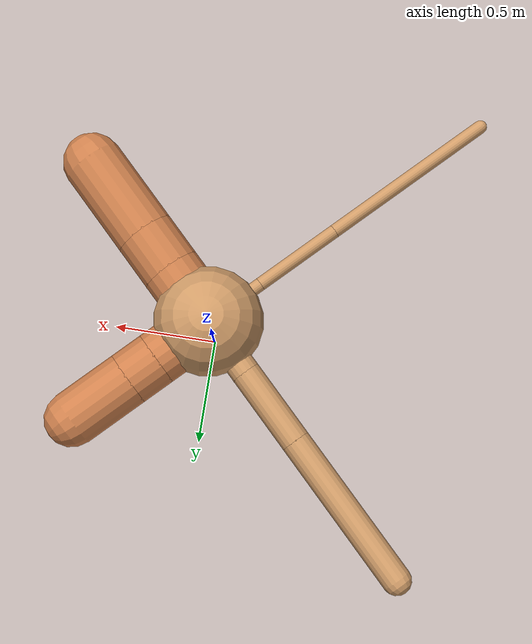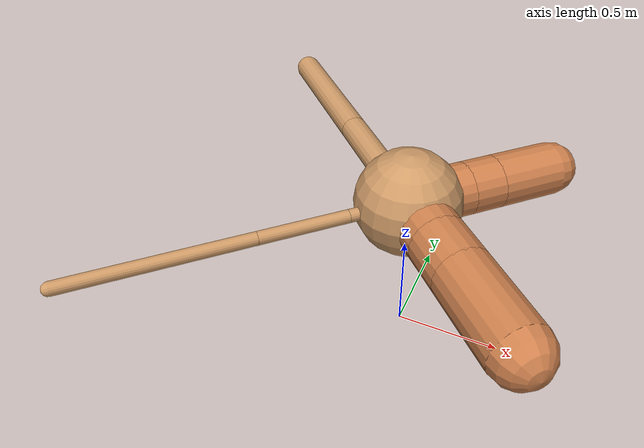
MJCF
<?xml version="1.0" ?>
<mujoco model="ant">

	<compiler angle="degree" coordinate="local" inertiafromgeom="true"/>

	<option integrator="RK4" timestep="0.01"/>

	<custom>

		<numeric data="0.0 0.0 0.55 1.0 0.0 0.0 0.0 0.0 1.0 0.0 -1.0 0.0 -1.0 0.0 1.0" name="init_qpos"/>

	</custom>

	<default>

		<joint armature="1" damping="1" limited="true"/>

		<geom conaffinity="0" condim="3" density="5.0" friction="1.5 0.1 0.1" margin="0.01" rgba="0.8 0.6 0.4 1"/>

	</default>

	<worldbody>

		<body name="torso" pos="0 0 0.75">

			<geom name="torso_geom" pos="0 0 0" size="0.24619075526880443" type="sphere"/>

			<!--joint armature="0" damping="0" limited="false" margin="0.01" name="root" pos="0 0 0" type="free"/-->

			<body name="front_left_leg" pos="0 0 0">

				<geom fromto="0 0 0 0.2 0.2 0" name="aux_1_geom" size="0.12430324860085865" type="capsule" rgba=".8 .5 .3 1"/>

				<body name="aux_1" pos="0.2 0.2 0">

					<joint axis="0 0 1" name="hip_1" pos="0.0 0.0 0.0" range="-40 40" type="hinge"/>

					<geom fromto="0 0 0 0.10666545529680149 0.10666545529680149 0" name="left_leg_geom" size="0.12430324860085865" type="capsule" rgba=".8 .5 .3 1"/>

					<body pos="0.10666545529680149 0.10666545529680149 0" name="front_left_foot">

						<joint axis="-1 1 0" name="ankle_1" pos="0.0 0.0 0.0" range="30 100" type="hinge"/>

						<geom fromto="0 0 0 0.21333091059360298 0.21333091059360298 0" name="left_ankle_geom" size="0.12430324860085865" type="capsule" rgba=".8 .5 .3 1"/>

					</body>

				</body>

			</body>

			<body name="front_right_leg" pos="0 0 0">

				<geom fromto="0 0 0 -0.2 0.2 0" name="aux_2_geom" size="0.06621292154331755" type="capsule"/>

				<body name="aux_2" pos="-0.2 0.2 0">

					<joint axis="0 0 1" name="hip_2" pos="0.0 0.0 0.0" range="-40 40" type="hinge"/>

					<geom fromto="0 0 0 -0.26227507385240634 0.26227507385240634 0" name="right_leg_geom" size="0.06621292154331755" type="capsule"/>

					<body pos="-0.26227507385240634 0.26227507385240634 0" name="front_right_foot">

						<joint axis="1 1 0" name="ankle_2" pos="0.0 0.0 0.0" range="-100 -30" type="hinge"/>

						<geom fromto="0 0 0 -0.5245501477048127 0.5245501477048127 0" name="right_ankle_geom" size="0.06621292154331755" type="capsule"/>

					</body>

				</body>

			</body>

			<body name="left_back_leg" pos="0 0 0">

				<geom fromto="0 0 0 -0.2 -0.2 0" name="aux_3_geom" size="0.030411230851655136" type="capsule"/>

				<body name="aux_3" pos="-0.2 -0.2 0">

					<joint axis="0 0 1" name="hip_3" pos="0.0 0.0 0.0" range="-40 40" type="hinge"/>

					<geom fromto="0 0 0 -0.288277888791234 -0.288277888791234 0" name="back_leg_geom" size="0.030411230851655136" type="capsule"/>

					<body pos="-0.288277888791234 -0.288277888791234 0" name="left_back_foot">

						<joint axis="-1 1 0" name="ankle_3" pos="0.0 0.0 0.0" range="-100 -30" type="hinge"/>

						<geom fromto="0 0 0 -0.576555777582468 -0.576555777582468 0" name="third_ankle_geom" size="0.030411230851655136" type="capsule"/>

					</body>

				</body>

			</body>

			<body name="right_back_leg" pos="0 0 0">

				<geom fromto="0 0 0 0.2 -0.2 0" name="aux_4_geom" size="0.13548692679000846" type="capsule" rgba=".8 .5 .3 1"/>

				<body name="aux_4" pos="0.2 -0.2 0">

					<joint axis="0 0 1" name="hip_4" pos="0.0 0.0 0.0" range="-40 40" type="hinge"/>

					<geom fromto="0 0 0 0.14261852078006285 -0.14261852078006285 0" name="rightback_leg_geom" size="0.13548692679000846" type="capsule" rgba=".8 .5 .3 1"/>

					<body pos="0.14261852078006285 -0.14261852078006285 0" name="right_back_foot">

						<joint axis="1 1 0" name="ankle_4" pos="0.0 0.0 0.0" range="30 100" type="hinge"/>

						<geom fromto="0 0 0 0.2852370415601257 -0.2852370415601257 0" name="fourth_ankle_geom" size="0.13548692679000846" type="capsule" rgba=".8 .5 .3 1"/>

					</body>

				</body>

			</body>

		</body>

	</worldbody>

	<actuator>

		<motor ctrllimited="true" ctrlrange="-1.0 1.0" joint="hip_4" gear="150"/>

		<motor ctrllimited="true" ctrlrange="-1.0 1.0" joint="ankle_4" gear="150"/>

		<motor ctrllimited="true" ctrlrange="-1.0 1.0" joint="hip_1" gear="150"/>

		<motor ctrllimited="true" ctrlrange="-1.0 1.0" joint="ankle_1" gear="150"/>

		<motor ctrllimited="true" ctrlrange="-1.0 1.0" joint="hip_2" gear="150"/>

		<motor ctrllimited="true" ctrlrange="-1.0 1.0" joint="ankle_2" gear="150"/>

		<motor ctrllimited="true" ctrlrange="-1.0 1.0" joint="hip_3" gear="150"/>

		<motor ctrllimited="true" ctrlrange="-1.0 1.0" joint="ankle_3" gear="150"/>

	</actuator>

</mujoco>
